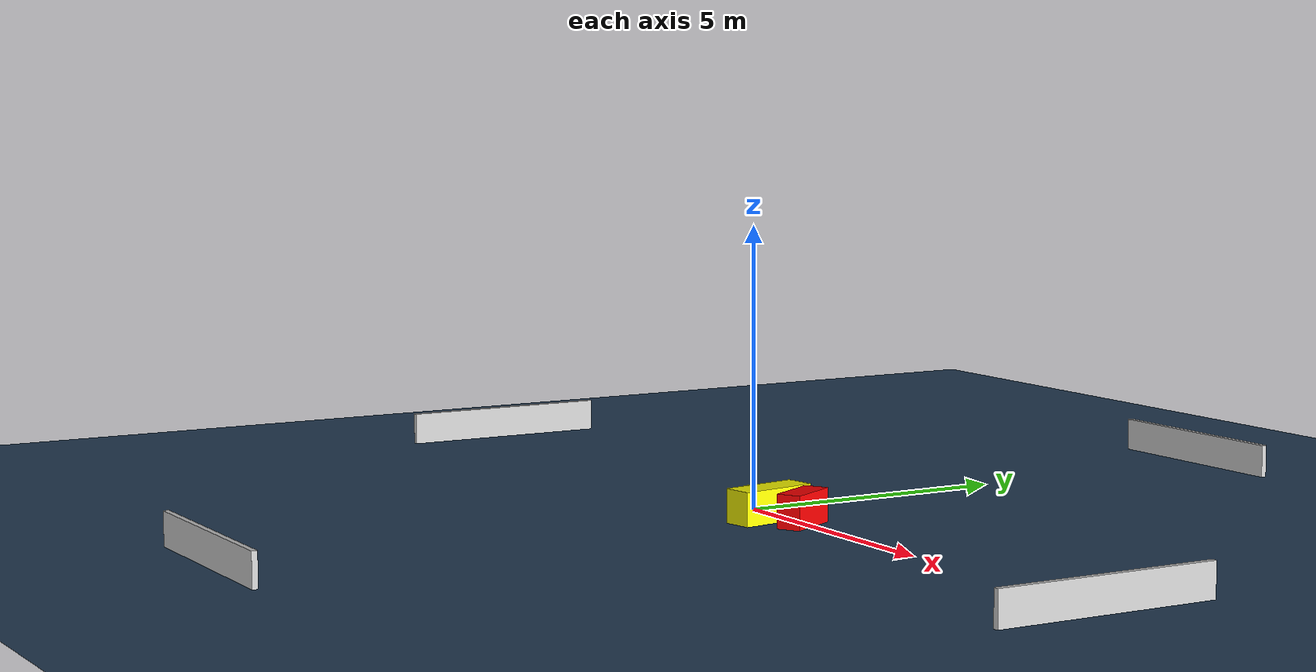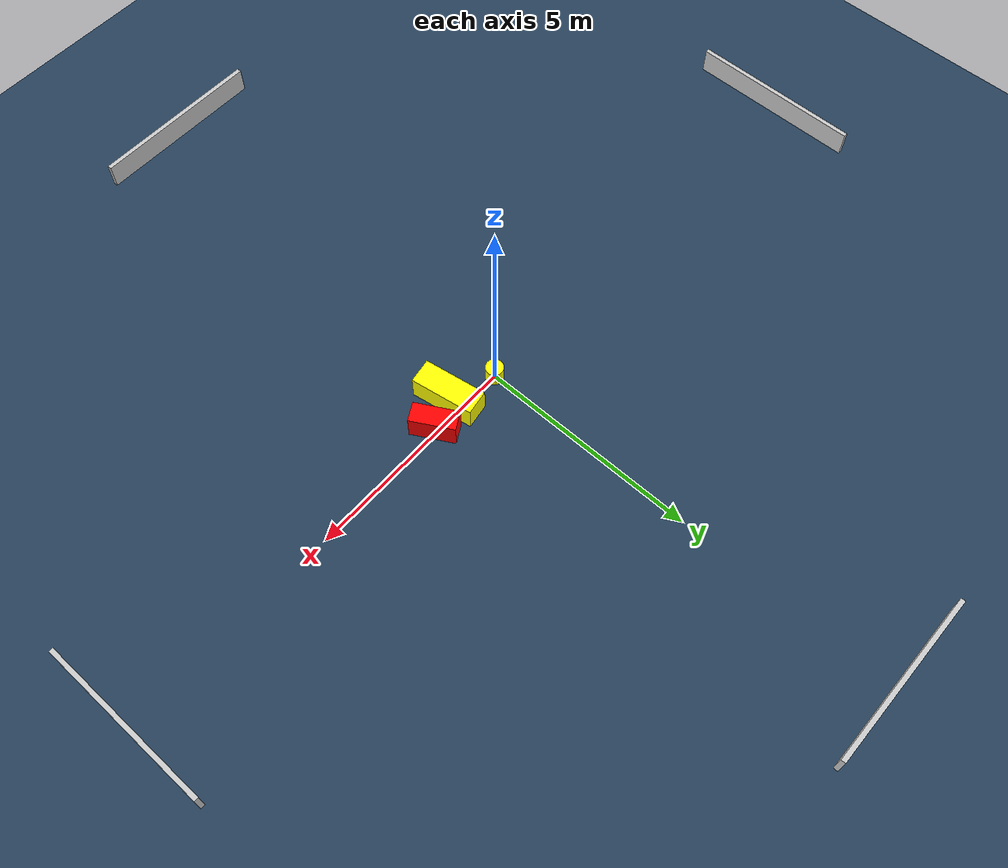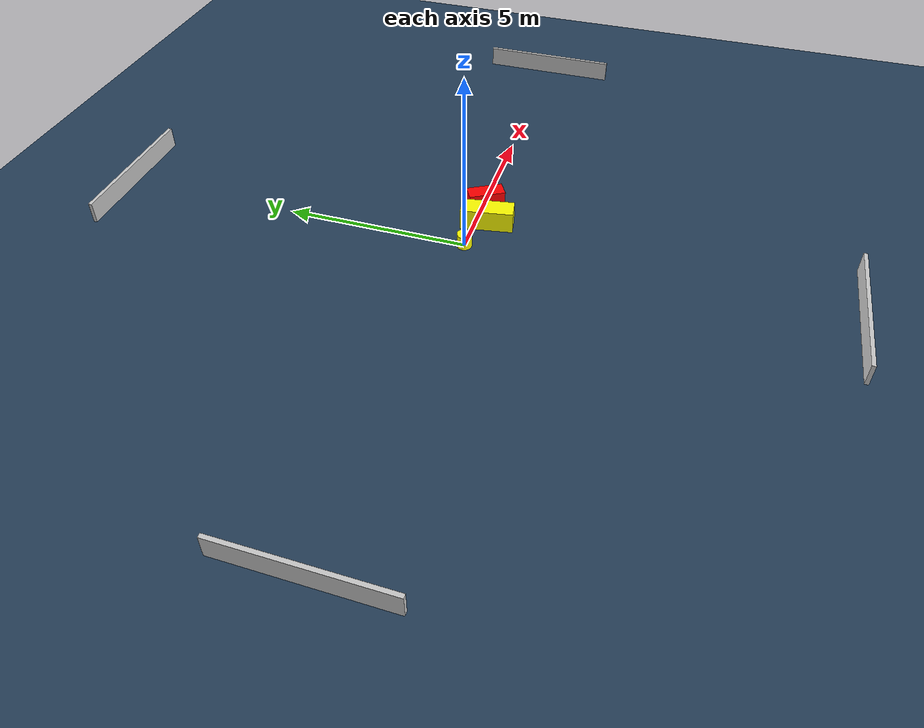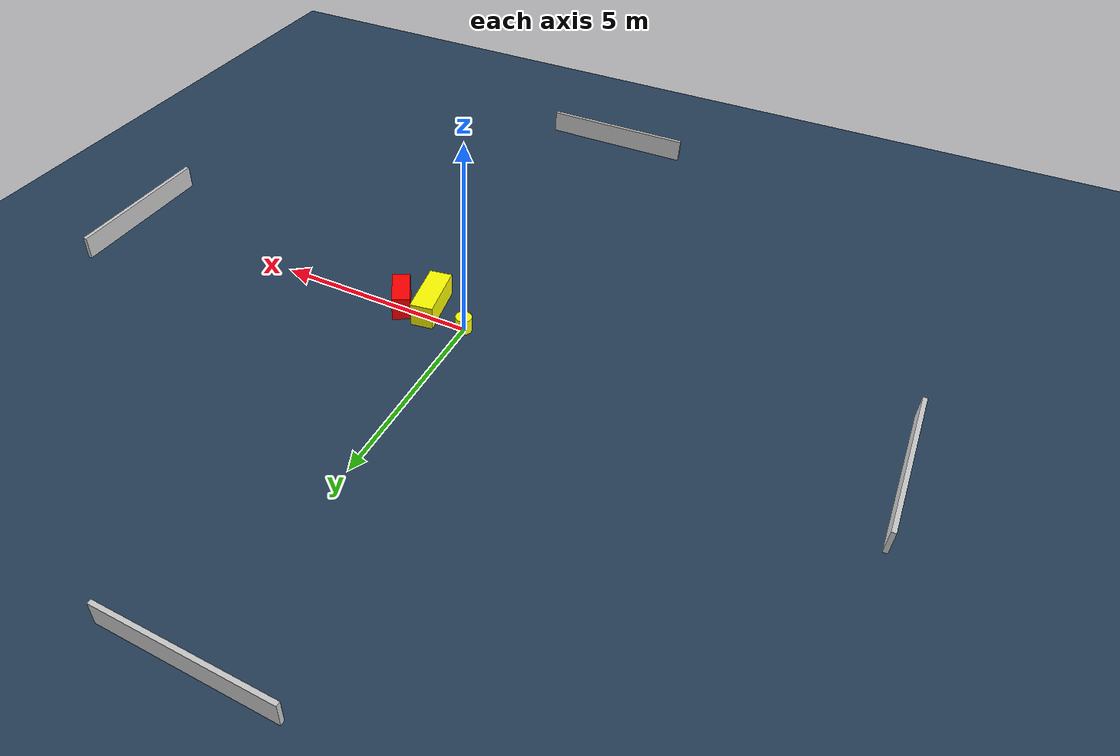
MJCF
<?xml version="1.0" ?>
<mujoco model="generated_environment">
  <option timestep="0.01" integrator="RK4" cone="elliptic"/>
  <default>
    <geom density="1"/>
  </default>
  <asset>
    <texture builtin="gradient" height="3072" name="skybox" rgb1="0.3 0.5 0.7" rgb2="0 0 0" type="skybox" width="512"/>
    <texture builtin="checker" height="300" name="groundplane" rgb1="0.2 0.3 0.4" rgb2="0.1 0.2 0.3" type="2d" width="300"/>
    <material name="groundplane" reflectance="0.2" texrepeat="5 5" texture="groundplane"/>
  </asset>
  <worldbody>
    <light dir="0 0 -1" directional="true" pos="0 0 1.5"/>
    <geom condim="3" friction="0.5 0.005 0.001" material="groundplane" name="floor" pos="0 0 0" size="0 0 0.05" type="plane"/>
    <body name="walls">
      <geom name="wall_1" condim="4" pos="-10.0 0.0 0.3" rgba="0.800000011920929 0.800000011920929 0.800000011920929 1.0" size="0.05 2.0 0.3" type="box"/>
      <geom name="wall_2" condim="4" pos="10.0 0.0 0.3" rgba="0.800000011920929 0.800000011920929 0.800000011920929 1.0" size="0.05 2.0 0.3" type="box"/>
      <geom name="wall_3" condim="4" pos="0.0 -10.0 0.3" rgba="0.800000011920929 0.800000011920929 0.800000011920929 1.0" size="2.0 0.05 0.3" type="box"/>
      <geom name="wall_4" condim="4" pos="0.0 10.0 0.3" rgba="0.800000011920929 0.800000011920929 0.800000011920929 1.0" size="2.0 0.05 0.3" type="box"/>
    </body>
    <body name="robot">
      <joint name="joint_x" type="slide" pos="0 0 0" axis="1 0 0"/>
      <joint name="joint_y" type="slide" pos="0 0 0" axis="0 1 0"/>
      <geom name="robot" type="cylinder" pos="0.0 0.0 0.2" size="0.2 0.2 0.0" mass="5.0" friction="1.0 0.005 0.0001" condim="4" rgba="1.0 1.0 0.0 1.0"/>
    </body>
    <body name="obstacle_1_movable">
      <geom name="obstacle_1_movable" condim="4" pos="1.0602813349255746 -0.3293234001338588 0.3" euler="0 0 9.312680096944614" friction="0.0 0.005 0.001" rgba="1.0 1.0 0.0 1.0" size="0.27830790550633544 0.7115399261221704 0.3" type="box" mass="0.1"/>
      <joint type="free"/>
    </body>
    <body name="obstacle_2_static">
      <geom name="obstacle_2_static" condim="4" pos="1.7588247963492742 -0.07770522768252185 0.3" euler="0 0 299.3772435634737" friction="0.0 0.005 0.001" rgba="1.0 0.0 0.0 1.0" size="0.5022389197527575 0.21882493472715897 0.3" type="box"/>
    </body>
  </worldbody>
  <actuator>
    <motor name="actuator_x" joint="joint_x" gear="1" ctrlrange="-1 1"/>
    <motor name="actuator_y" joint="joint_y" gear="1" ctrlrange="-1 1"/>
  </actuator>
</mujoco>
